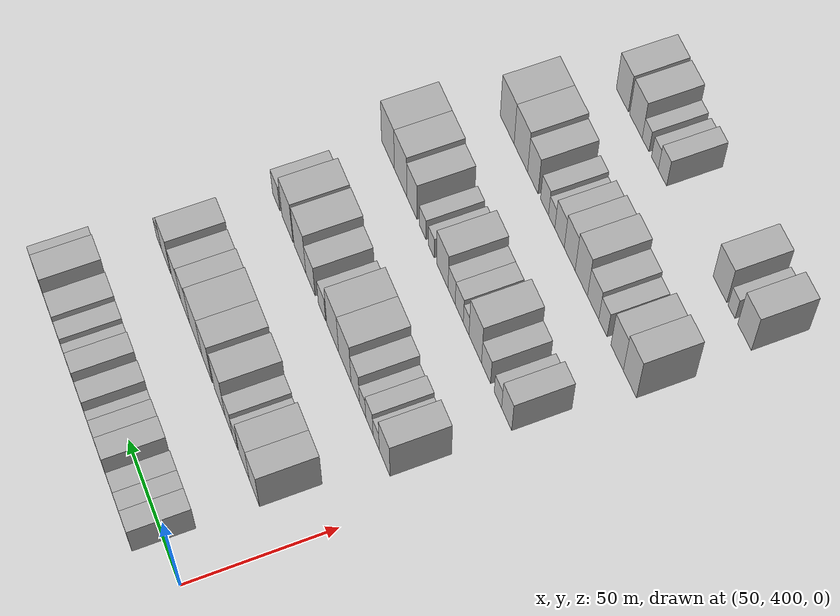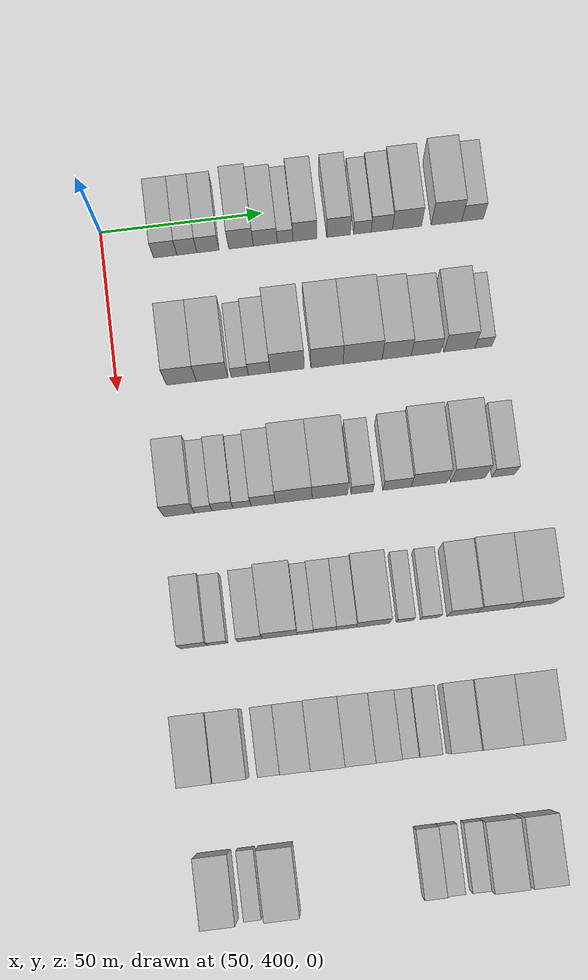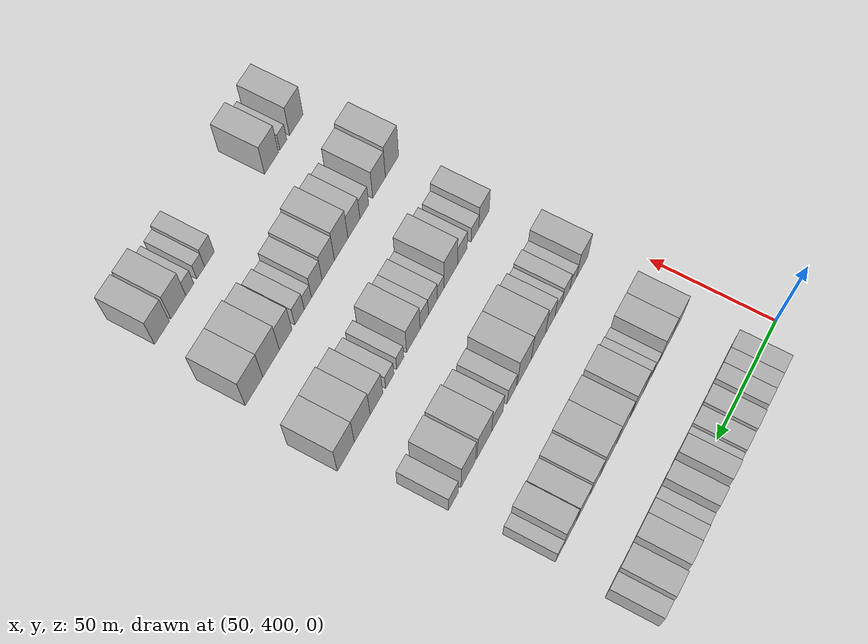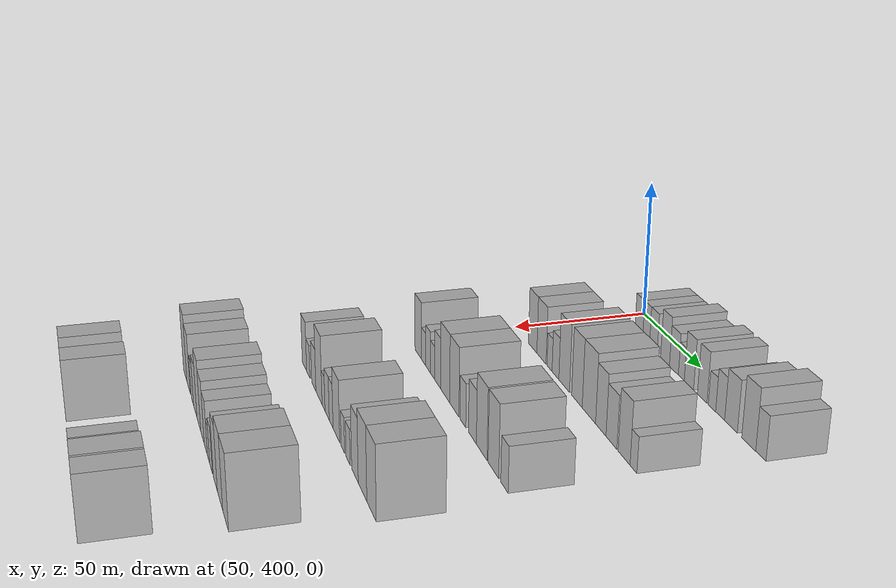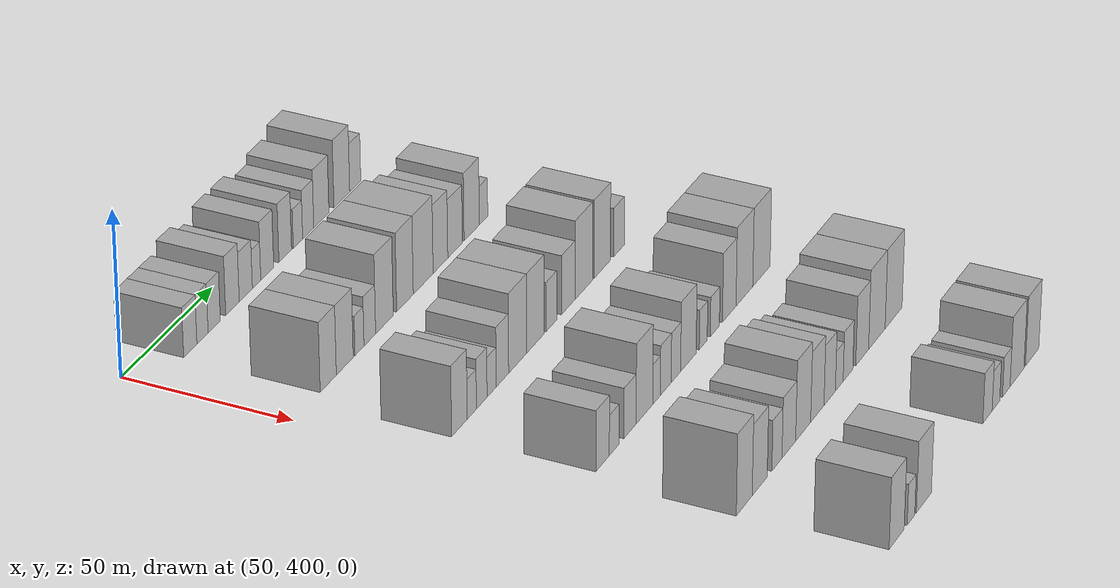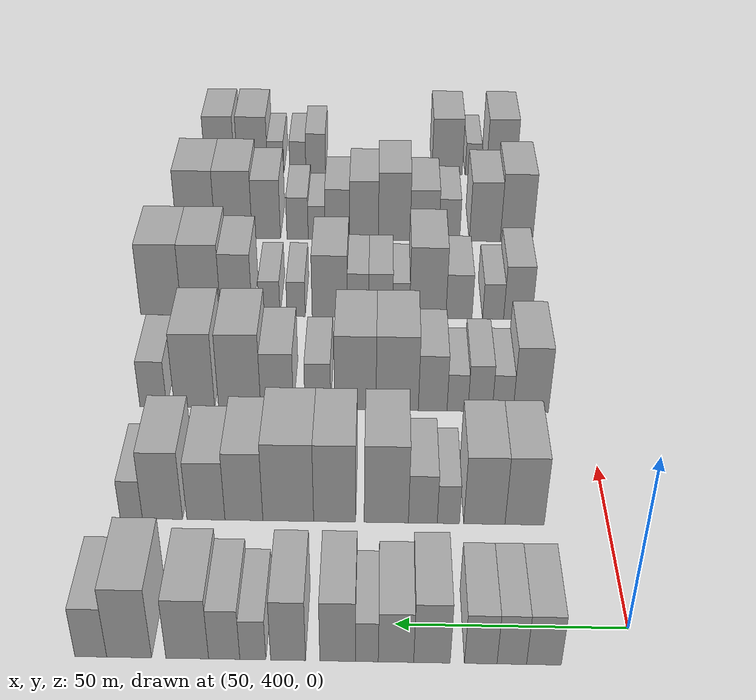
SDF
<sdf version="1.6">
 <world name="default">
  <model name="building_119">
   <static>1</static>
   <pose>50.0000 419.0222 0 0.000000 0.000000 0.000000</pose>
   <link name="link">
    <pose>0 0 7.50 0 0 0</pose>
    <collision name="collision"><geometry><box><size>20.0000 7.2438 15.0000</size></box></geometry></collision>
    <visual name="visual">
     <cast_shadows>0</cast_shadows>
     <geometry><box><size>20.0000 7.2438 15.0000</size></box></geometry>
     <material>
      <script>
       <uri>model://HANNAS_wall/materials/scripts</uri>
       <uri>model://HANNAS_wall/materials/textures</uri>
       <name>vrc/HANNAS_wall</name>
      </script>
     </material>
    </visual>
   </link>
  </model>
  <model name="building_120">
   <static>1</static>
   <pose>50.0000 425.7234 0 0.000000 0.000000 0.000000</pose>
   <link name="link">
    <pose>0 0 7.50 0 0 0</pose>
    <collision name="collision"><geometry><box><size>20.0000 6.1588 15.0000</size></box></geometry></collision>
    <visual name="visual">
     <cast_shadows>0</cast_shadows>
     <geometry><box><size>20.0000 6.1588 15.0000</size></box></geometry>
     <material>
      <script>
       <uri>model://HANNAS_wall/materials/scripts</uri>
       <uri>model://HANNAS_wall/materials/textures</uri>
       <name>vrc/HANNAS_wall</name>
      </script>
     </material>
    </visual>
   </link>
  </model>
  <model name="building_121">
   <static>1</static>
   <pose>50.0000 432.2003 0 0.000000 0.000000 0.000000</pose>
   <link name="link">
    <pose>0 0 7.50 0 0 0</pose>
    <collision name="collision"><geometry><box><size>20.0000 6.7949 15.0000</size></box></geometry></collision>
    <visual name="visual">
     <cast_shadows>0</cast_shadows>
     <geometry><box><size>20.0000 6.7949 15.0000</size></box></geometry>
     <material>
      <script>
       <uri>model://HANNAS_wall/materials/scripts</uri>
       <uri>model://HANNAS_wall/materials/textures</uri>
       <name>vrc/HANNAS_wall</name>
      </script>
     </material>
    </visual>
   </link>
  </model>
  <model name="building_122">
   <static>1</static>
   <pose>50.0000 442.4061 0 0.000000 0.000000 0.000000</pose>
   <link name="link">
    <pose>0 0 9.00 0 0 0</pose>
    <collision name="collision"><geometry><box><size>20.0000 7.6168 18.0000</size></box></geometry></collision>
    <visual name="visual">
     <cast_shadows>0</cast_shadows>
     <geometry><box><size>20.0000 7.6168 18.0000</size></box></geometry>
     <material>
      <script>
       <uri>model://HANNAS_wall/materials/scripts</uri>
       <uri>model://HANNAS_wall/materials/textures</uri>
       <name>vrc/HANNAS_wall</name>
      </script>
     </material>
    </visual>
   </link>
  </model>
  <model name="building_123">
   <static>1</static>
   <pose>50.0000 449.9223 0 0.000000 0.000000 0.000000</pose>
   <link name="link">
    <pose>0 0 7.50 0 0 0</pose>
    <collision name="collision"><geometry><box><size>20.0000 7.4155 15.0000</size></box></geometry></collision>
    <visual name="visual">
     <cast_shadows>0</cast_shadows>
     <geometry><box><size>20.0000 7.4155 15.0000</size></box></geometry>
     <material>
      <script>
       <uri>model://HANNAS_wall/materials/scripts</uri>
       <uri>model://HANNAS_wall/materials/textures</uri>
       <name>vrc/HANNAS_wall</name>
      </script>
     </material>
    </visual>
   </link>
  </model>
  <model name="building_124">
   <static>1</static>
   <pose>50.0000 456.0315 0 0.000000 0.000000 0.000000</pose>
   <link name="link">
    <pose>0 0 6.00 0 0 0</pose>
    <collision name="collision"><geometry><box><size>20.0000 4.8029 12.0000</size></box></geometry></collision>
    <visual name="visual">
     <cast_shadows>0</cast_shadows>
     <geometry><box><size>20.0000 4.8029 12.0000</size></box></geometry>
     <material>
      <script>
       <uri>model://HANNAS_wall/materials/scripts</uri>
       <uri>model://HANNAS_wall/materials/textures</uri>
       <name>vrc/HANNAS_wall</name>
      </script>
     </material>
    </visual>
   </link>
  </model>
  <model name="building_125">
   <static>1</static>
   <pose>50.0000 462.1482 0 0.000000 0.000000 0.000000</pose>
   <link name="link">
    <pose>0 0 9.00 0 0 0</pose>
    <collision name="collision"><geometry><box><size>20.0000 7.4305 18.0000</size></box></geometry></collision>
    <visual name="visual">
     <cast_shadows>0</cast_shadows>
     <geometry><box><size>20.0000 7.4305 18.0000</size></box></geometry>
     <material>
      <script>
       <uri>model://HANNAS_wall/materials/scripts</uri>
       <uri>model://HANNAS_wall/materials/textures</uri>
       <name>vrc/HANNAS_wall</name>
      </script>
     </material>
    </visual>
   </link>
  </model>
  <model name="building_126">
   <static>1</static>
   <pose>50.0000 472.5253 0 0.000000 0.000000 0.000000</pose>
   <link name="link">
    <pose>0 0 9.00 0 0 0</pose>
    <collision name="collision"><geometry><box><size>20.0000 7.3238 18.0000</size></box></geometry></collision>
    <visual name="visual">
     <cast_shadows>0</cast_shadows>
     <geometry><box><size>20.0000 7.3238 18.0000</size></box></geometry>
     <material>
      <script>
       <uri>model://HANNAS_wall/materials/scripts</uri>
       <uri>model://HANNAS_wall/materials/textures</uri>
       <name>vrc/HANNAS_wall</name>
      </script>
     </material>
    </visual>
   </link>
  </model>
  <model name="building_127">
   <static>1</static>
   <pose>50.0000 479.9237 0 0.000000 0.000000 0.000000</pose>
   <link name="link">
    <pose>0 0 6.00 0 0 0</pose>
    <collision name="collision"><geometry><box><size>20.0000 5.4729 12.0000</size></box></geometry></collision>
    <visual name="visual">
     <cast_shadows>0</cast_shadows>
     <geometry><box><size>20.0000 5.4729 12.0000</size></box></geometry>
     <material>
      <script>
       <uri>model://HANNAS_wall/materials/scripts</uri>
       <uri>model://HANNAS_wall/materials/textures</uri>
       <name>vrc/HANNAS_wall</name>
      </script>
     </material>
    </visual>
   </link>
  </model>
  <model name="building_128">
   <static>1</static>
   <pose>50.0000 485.9379 0 0.000000 0.000000 0.000000</pose>
   <link name="link">
    <pose>0 0 7.50 0 0 0</pose>
    <collision name="collision"><geometry><box><size>20.0000 6.5555 15.0000</size></box></geometry></collision>
    <visual name="visual">
     <cast_shadows>0</cast_shadows>
     <geometry><box><size>20.0000 6.5555 15.0000</size></box></geometry>
     <material>
      <script>
       <uri>model://HANNAS_wall/materials/scripts</uri>
       <uri>model://HANNAS_wall/materials/textures</uri>
       <name>vrc/HANNAS_wall</name>
      </script>
     </material>
    </visual>
   </link>
  </model>
  <model name="building_129">
   <static>1</static>
   <pose>50.0000 493.7126 0 0.000000 0.000000 0.000000</pose>
   <link name="link">
    <pose>0 0 9.00 0 0 0</pose>
    <collision name="collision"><geometry><box><size>20.0000 8.9940 18.0000</size></box></geometry></collision>
    <visual name="visual">
     <cast_shadows>0</cast_shadows>
     <geometry><box><size>20.0000 8.9940 18.0000</size></box></geometry>
     <material>
      <script>
       <uri>model://HANNAS_wall/materials/scripts</uri>
       <uri>model://HANNAS_wall/materials/textures</uri>
       <name>vrc/HANNAS_wall</name>
      </script>
     </material>
    </visual>
   </link>
  </model>
  <model name="building_130">
   <static>1</static>
   <pose>50.0000 505.9392 0 0.000000 0.000000 0.000000</pose>
   <link name="link">
    <pose>0 0 10.50 0 0 0</pose>
    <collision name="collision"><geometry><box><size>20.0000 9.4592 21.0000</size></box></geometry></collision>
    <visual name="visual">
     <cast_shadows>0</cast_shadows>
     <geometry><box><size>20.0000 9.4592 21.0000</size></box></geometry>
     <material>
      <script>
       <uri>model://HANNAS_wall/materials/scripts</uri>
       <uri>model://HANNAS_wall/materials/textures</uri>
       <name>vrc/HANNAS_wall</name>
      </script>
     </material>
    </visual>
   </link>
  </model>
  <model name="building_131">
   <static>1</static>
   <pose>50.0000 514.0240 0 0.000000 0.000000 0.000000</pose>
   <link name="link">
    <pose>0 0 7.50 0 0 0</pose>
    <collision name="collision"><geometry><box><size>20.0000 6.7103 15.0000</size></box></geometry></collision>
    <visual name="visual">
     <cast_shadows>0</cast_shadows>
     <geometry><box><size>20.0000 6.7103 15.0000</size></box></geometry>
     <material>
      <script>
       <uri>model://HANNAS_wall/materials/scripts</uri>
       <uri>model://HANNAS_wall/materials/textures</uri>
       <name>vrc/HANNAS_wall</name>
      </script>
     </material>
    </visual>
   </link>
  </model>
  <model name="building_255">
   <static>1</static>
   <pose>90.0000 419.5918 0 0.000000 0.000000 0.000000</pose>
   <link name="link">
    <pose>0 0 10.50 0 0 0</pose>
    <collision name="collision"><geometry><box><size>20.0000 9.1378 21.0000</size></box></geometry></collision>
    <visual name="visual">
     <cast_shadows>0</cast_shadows>
     <geometry><box><size>20.0000 9.1378 21.0000</size></box></geometry>
     <material>
      <script>
       <uri>model://HANNAS_wall/materials/scripts</uri>
       <uri>model://HANNAS_wall/materials/textures</uri>
       <name>vrc/HANNAS_wall</name>
      </script>
     </material>
    </visual>
   </link>
  </model>
  <model name="building_256">
   <static>1</static>
   <pose>90.0000 428.9878 0 0.000000 0.000000 0.000000</pose>
   <link name="link">
    <pose>0 0 10.50 0 0 0</pose>
    <collision name="collision"><geometry><box><size>20.0000 9.6542 21.0000</size></box></geometry></collision>
    <visual name="visual">
     <cast_shadows>0</cast_shadows>
     <geometry><box><size>20.0000 9.6542 21.0000</size></box></geometry>
     <material>
      <script>
       <uri>model://HANNAS_wall/materials/scripts</uri>
       <uri>model://HANNAS_wall/materials/textures</uri>
       <name>vrc/HANNAS_wall</name>
      </script>
     </material>
    </visual>
   </link>
  </model>
  <model name="building_257">
   <static>1</static>
   <pose>90.0000 437.4126 0 0.000000 0.000000 0.000000</pose>
   <link name="link">
    <pose>0 0 6.00 0 0 0</pose>
    <collision name="collision"><geometry><box><size>20.0000 5.1952 12.0000</size></box></geometry></collision>
    <visual name="visual">
     <cast_shadows>0</cast_shadows>
     <geometry><box><size>20.0000 5.1952 12.0000</size></box></geometry>
     <material>
      <script>
       <uri>model://HANNAS_wall/materials/scripts</uri>
       <uri>model://HANNAS_wall/materials/textures</uri>
       <name>vrc/HANNAS_wall</name>
      </script>
     </material>
    </visual>
   </link>
  </model>
  <model name="building_258">
   <static>1</static>
   <pose>90.0000 443.3906 0 0.000000 0.000000 0.000000</pose>
   <link name="link">
    <pose>0 0 7.50 0 0 0</pose>
    <collision name="collision"><geometry><box><size>20.0000 6.7607 15.0000</size></box></geometry></collision>
    <visual name="visual">
     <cast_shadows>0</cast_shadows>
     <geometry><box><size>20.0000 6.7607 15.0000</size></box></geometry>
     <material>
      <script>
       <uri>model://HANNAS_wall/materials/scripts</uri>
       <uri>model://HANNAS_wall/materials/textures</uri>
       <name>vrc/HANNAS_wall</name>
      </script>
     </material>
    </visual>
   </link>
  </model>
  <model name="building_259">
   <static>1</static>
   <pose>90.0000 451.9508 0 0.000000 0.000000 0.000000</pose>
   <link name="link">
    <pose>0 0 12.00 0 0 0</pose>
    <collision name="collision"><geometry><box><size>20.0000 10.3598 24.0000</size></box></geometry></collision>
    <visual name="visual">
     <cast_shadows>0</cast_shadows>
     <geometry><box><size>20.0000 10.3598 24.0000</size></box></geometry>
     <material>
      <script>
       <uri>model://HANNAS_wall/materials/scripts</uri>
       <uri>model://HANNAS_wall/materials/textures</uri>
       <name>vrc/HANNAS_wall</name>
      </script>
     </material>
    </visual>
   </link>
  </model>
  <model name="building_260">
   <static>1</static>
   <pose>90.0000 464.0607 0 0.000000 0.000000 0.000000</pose>
   <link name="link">
    <pose>0 0 12.00 0 0 0</pose>
    <collision name="collision"><geometry><box><size>20.0000 9.8599 24.0000</size></box></geometry></collision>
    <visual name="visual">
     <cast_shadows>0</cast_shadows>
     <geometry><box><size>20.0000 9.8599 24.0000</size></box></geometry>
     <material>
      <script>
       <uri>model://HANNAS_wall/materials/scripts</uri>
       <uri>model://HANNAS_wall/materials/textures</uri>
       <name>vrc/HANNAS_wall</name>
      </script>
     </material>
    </visual>
   </link>
  </model>
  <model name="building_261">
   <static>1</static>
   <pose>90.0000 474.9596 0 0.000000 0.000000 0.000000</pose>
   <link name="link">
    <pose>0 0 12.00 0 0 0</pose>
    <collision name="collision"><geometry><box><size>20.0000 11.9379 24.0000</size></box></geometry></collision>
    <visual name="visual">
     <cast_shadows>0</cast_shadows>
     <geometry><box><size>20.0000 11.9379 24.0000</size></box></geometry>
     <material>
      <script>
       <uri>model://HANNAS_wall/materials/scripts</uri>
       <uri>model://HANNAS_wall/materials/textures</uri>
       <name>vrc/HANNAS_wall</name>
      </script>
     </material>
    </visual>
   </link>
  </model>
  <model name="building_262">
   <static>1</static>
   <pose>90.0000 485.3880 0 0.000000 0.000000 0.000000</pose>
   <link name="link">
    <pose>0 0 10.50 0 0 0</pose>
    <collision name="collision"><geometry><box><size>20.0000 8.9188 21.0000</size></box></geometry></collision>
    <visual name="visual">
     <cast_shadows>0</cast_shadows>
     <geometry><box><size>20.0000 8.9188 21.0000</size></box></geometry>
     <material>
      <script>
       <uri>model://HANNAS_wall/materials/scripts</uri>
       <uri>model://HANNAS_wall/materials/textures</uri>
       <name>vrc/HANNAS_wall</name>
      </script>
     </material>
    </visual>
   </link>
  </model>
  <model name="building_263">
   <static>1</static>
   <pose>90.0000 494.3400 0 0.000000 0.000000 0.000000</pose>
   <link name="link">
    <pose>0 0 9.00 0 0 0</pose>
    <collision name="collision"><geometry><box><size>20.0000 8.9853 18.0000</size></box></geometry></collision>
    <visual name="visual">
     <cast_shadows>0</cast_shadows>
     <geometry><box><size>20.0000 8.9853 18.0000</size></box></geometry>
     <material>
      <script>
       <uri>model://HANNAS_wall/materials/scripts</uri>
       <uri>model://HANNAS_wall/materials/textures</uri>
       <name>vrc/HANNAS_wall</name>
      </script>
     </material>
    </visual>
   </link>
  </model>
  <model name="building_264">
   <static>1</static>
   <pose>90.0000 504.5758 0 0.000000 0.000000 0.000000</pose>
   <link name="link">
    <pose>0 0 10.50 0 0 0</pose>
    <collision name="collision"><geometry><box><size>20.0000 9.4862 21.0000</size></box></geometry></collision>
    <visual name="visual">
     <cast_shadows>0</cast_shadows>
     <geometry><box><size>20.0000 9.4862 21.0000</size></box></geometry>
     <material>
      <script>
       <uri>model://HANNAS_wall/materials/scripts</uri>
       <uri>model://HANNAS_wall/materials/textures</uri>
       <name>vrc/HANNAS_wall</name>
      </script>
     </material>
    </visual>
   </link>
  </model>
  <model name="building_265">
   <static>1</static>
   <pose>90.0000 511.9490 0 0.000000 0.000000 0.000000</pose>
   <link name="link">
    <pose>0 0 6.00 0 0 0</pose>
    <collision name="collision"><geometry><box><size>20.0000 5.2603 12.0000</size></box></geometry></collision>
    <visual name="visual">
     <cast_shadows>0</cast_shadows>
     <geometry><box><size>20.0000 5.2603 12.0000</size></box></geometry>
     <material>
      <script>
       <uri>model://HANNAS_wall/materials/scripts</uri>
       <uri>model://HANNAS_wall/materials/textures</uri>
       <name>vrc/HANNAS_wall</name>
      </script>
     </material>
    </visual>
   </link>
  </model>
  <model name="building_390">
   <static>1</static>
   <pose>130.0000 414.5360 0 0.000000 0.000000 0.000000</pose>
   <link name="link">
    <pose>0 0 10.50 0 0 0</pose>
    <collision name="collision"><geometry><box><size>20.0000 9.1112 21.0000</size></box></geometry></collision>
    <visual name="visual">
     <cast_shadows>0</cast_shadows>
     <geometry><box><size>20.0000 9.1112 21.0000</size></box></geometry>
     <material>
      <script>
       <uri>model://HANNAS_wall/materials/scripts</uri>
       <uri>model://HANNAS_wall/materials/textures</uri>
       <name>vrc/HANNAS_wall</name>
      </script>
     </material>
    </visual>
   </link>
  </model>
  <model name="building_391">
   <static>1</static>
   <pose>130.0000 421.7872 0 0.000000 0.000000 0.000000</pose>
   <link name="link">
    <pose>0 0 6.00 0 0 0</pose>
    <collision name="collision"><geometry><box><size>20.0000 5.3911 12.0000</size></box></geometry></collision>
    <visual name="visual">
     <cast_shadows>0</cast_shadows>
     <geometry><box><size>20.0000 5.3911 12.0000</size></box></geometry>
     <material>
      <script>
       <uri>model://HANNAS_wall/materials/scripts</uri>
       <uri>model://HANNAS_wall/materials/textures</uri>
       <name>vrc/HANNAS_wall</name>
      </script>
     </material>
    </visual>
   </link>
  </model>
  <model name="building_392">
   <static>1</static>
   <pose>130.0000 427.6297 0 0.000000 0.000000 0.000000</pose>
   <link name="link">
    <pose>0 0 7.50 0 0 0</pose>
    <collision name="collision"><geometry><box><size>20.0000 6.2939 15.0000</size></box></geometry></collision>
    <visual name="visual">
     <cast_shadows>0</cast_shadows>
     <geometry><box><size>20.0000 6.2939 15.0000</size></box></geometry>
     <material>
      <script>
       <uri>model://HANNAS_wall/materials/scripts</uri>
       <uri>model://HANNAS_wall/materials/textures</uri>
       <name>vrc/HANNAS_wall</name>
      </script>
     </material>
    </visual>
   </link>
  </model>
  <model name="building_393">
   <static>1</static>
   <pose>130.0000 433.4944 0 0.000000 0.000000 0.000000</pose>
   <link name="link">
    <pose>0 0 6.00 0 0 0</pose>
    <collision name="collision"><geometry><box><size>20.0000 5.4356 12.0000</size></box></geometry></collision>
    <visual name="visual">
     <cast_shadows>0</cast_shadows>
     <geometry><box><size>20.0000 5.4356 12.0000</size></box></geometry>
     <material>
      <script>
       <uri>model://HANNAS_wall/materials/scripts</uri>
       <uri>model://HANNAS_wall/materials/textures</uri>
       <name>vrc/HANNAS_wall</name>
      </script>
     </material>
    </visual>
   </link>
  </model>
  <model name="building_394">
   <static>1</static>
   <pose>130.0000 439.9347 0 0.000000 0.000000 0.000000</pose>
   <link name="link">
    <pose>0 0 9.00 0 0 0</pose>
    <collision name="collision"><geometry><box><size>20.0000 7.4450 18.0000</size></box></geometry></collision>
    <visual name="visual">
     <cast_shadows>0</cast_shadows>
     <geometry><box><size>20.0000 7.4450 18.0000</size></box></geometry>
     <material>
      <script>
       <uri>model://HANNAS_wall/materials/scripts</uri>
       <uri>model://HANNAS_wall/materials/textures</uri>
       <name>vrc/HANNAS_wall</name>
      </script>
     </material>
    </visual>
   </link>
  </model>
  <model name="building_395">
   <static>1</static>
   <pose>130.0000 449.1612 0 0.000000 0.000000 0.000000</pose>
   <link name="link">
    <pose>0 0 12.00 0 0 0</pose>
    <collision name="collision"><geometry><box><size>20.0000 11.0080 24.0000</size></box></geometry></collision>
    <visual name="visual">
     <cast_shadows>0</cast_shadows>
     <geometry><box><size>20.0000 11.0080 24.0000</size></box></geometry>
     <material>
      <script>
       <uri>model://HANNAS_wall/materials/scripts</uri>
       <uri>model://HANNAS_wall/materials/textures</uri>
       <name>vrc/HANNAS_wall</name>
      </script>
     </material>
    </visual>
   </link>
  </model>
  <model name="building_396">
   <static>1</static>
   <pose>130.0000 460.0300 0 0.000000 0.000000 0.000000</pose>
   <link name="link">
    <pose>0 0 12.00 0 0 0</pose>
    <collision name="collision"><geometry><box><size>20.0000 10.7296 24.0000</size></box></geometry></collision>
    <visual name="visual">
     <cast_shadows>0</cast_shadows>
     <geometry><box><size>20.0000 10.7296 24.0000</size></box></geometry>
     <material>
      <script>
       <uri>model://HANNAS_wall/materials/scripts</uri>
       <uri>model://HANNAS_wall/materials/textures</uri>
       <name>vrc/HANNAS_wall</name>
      </script>
     </material>
    </visual>
   </link>
  </model>
  <model name="building_397">
   <static>1</static>
   <pose>130.0000 469.7368 0 0.000000 0.000000 0.000000</pose>
   <link name="link">
    <pose>0 0 7.50 0 0 0</pose>
    <collision name="collision"><geometry><box><size>20.0000 6.6840 15.0000</size></box></geometry></collision>
    <visual name="visual">
     <cast_shadows>0</cast_shadows>
     <geometry><box><size>20.0000 6.6840 15.0000</size></box></geometry>
     <material>
      <script>
       <uri>model://HANNAS_wall/materials/scripts</uri>
       <uri>model://HANNAS_wall/materials/textures</uri>
       <name>vrc/HANNAS_wall</name>
      </script>
     </material>
    </visual>
   </link>
  </model>
  <model name="building_398">
   <static>1</static>
   <pose>130.0000 480.3447 0 0.000000 0.000000 0.000000</pose>
   <link name="link">
    <pose>0 0 9.00 0 0 0</pose>
    <collision name="collision"><geometry><box><size>20.0000 8.5318 18.0000</size></box></geometry></collision>
    <visual name="visual">
     <cast_shadows>0</cast_shadows>
     <geometry><box><size>20.0000 8.5318 18.0000</size></box></geometry>
     <material>
      <script>
       <uri>model://HANNAS_wall/materials/scripts</uri>
       <uri>model://HANNAS_wall/materials/textures</uri>
       <name>vrc/HANNAS_wall</name>
      </script>
     </material>
    </visual>
   </link>
  </model>
  <model name="building_399">
   <static>1</static>
   <pose>130.0000 490.1055 0 0.000000 0.000000 0.000000</pose>
   <link name="link">
    <pose>0 0 12.00 0 0 0</pose>
    <collision name="collision"><geometry><box><size>20.0000 10.9897 24.0000</size></box></geometry></collision>
    <visual name="visual">
     <cast_shadows>0</cast_shadows>
     <geometry><box><size>20.0000 10.9897 24.0000</size></box></geometry>
     <material>
      <script>
       <uri>model://HANNAS_wall/materials/scripts</uri>
       <uri>model://HANNAS_wall/materials/textures</uri>
       <name>vrc/HANNAS_wall</name>
      </script>
     </material>
    </visual>
   </link>
  </model>
  <model name="building_400">
   <static>1</static>
   <pose>130.0000 501.8686 0 0.000000 0.000000 0.000000</pose>
   <link name="link">
    <pose>0 0 12.00 0 0 0</pose>
    <collision name="collision"><geometry><box><size>20.0000 10.5365 24.0000</size></box></geometry></collision>
    <visual name="visual">
     <cast_shadows>0</cast_shadows>
     <geometry><box><size>20.0000 10.5365 24.0000</size></box></geometry>
     <material>
      <script>
       <uri>model://HANNAS_wall/materials/scripts</uri>
       <uri>model://HANNAS_wall/materials/textures</uri>
       <name>vrc/HANNAS_wall</name>
      </script>
     </material>
    </visual>
   </link>
  </model>
  <model name="building_401">
   <static>1</static>
   <pose>130.0000 512.6352 0 0.000000 0.000000 0.000000</pose>
   <link name="link">
    <pose>0 0 7.50 0 0 0</pose>
    <collision name="collision"><geometry><box><size>20.0000 6.9969 15.0000</size></box></geometry></collision>
    <visual name="visual">
     <cast_shadows>0</cast_shadows>
     <geometry><box><size>20.0000 6.9969 15.0000</size></box></geometry>
     <material>
      <script>
       <uri>model://HANNAS_wall/materials/scripts</uri>
       <uri>model://HANNAS_wall/materials/textures</uri>
       <name>vrc/HANNAS_wall</name>
      </script>
     </material>
    </visual>
   </link>
  </model>
  <model name="building_523">
   <static>1</static>
   <pose>170.0000 414.5745 0 0.000000 0.000000 0.000000</pose>
   <link name="link">
    <pose>0 0 9.00 0 0 0</pose>
    <collision name="collision"><geometry><box><size>20.0000 8.0607 18.0000</size></box></geometry></collision>
    <visual name="visual">
     <cast_shadows>0</cast_shadows>
     <geometry><box><size>20.0000 8.0607 18.0000</size></box></geometry>
     <material>
      <script>
       <uri>model://HANNAS_wall/materials/scripts</uri>
       <uri>model://HANNAS_wall/materials/textures</uri>
       <name>vrc/HANNAS_wall</name>
      </script>
     </material>
    </visual>
   </link>
  </model>
  <model name="building_524">
   <static>1</static>
   <pose>170.0000 421.5926 0 0.000000 0.000000 0.000000</pose>
   <link name="link">
    <pose>0 0 6.00 0 0 0</pose>
    <collision name="collision"><geometry><box><size>20.0000 5.9756 12.0000</size></box></geometry></collision>
    <visual name="visual">
     <cast_shadows>0</cast_shadows>
     <geometry><box><size>20.0000 5.9756 12.0000</size></box></geometry>
     <material>
      <script>
       <uri>model://HANNAS_wall/materials/scripts</uri>
       <uri>model://HANNAS_wall/materials/textures</uri>
       <name>vrc/HANNAS_wall</name>
      </script>
     </material>
    </visual>
   </link>
  </model>
  <model name="building_525">
   <static>1</static>
   <pose>170.0000 431.3042 0 0.000000 0.000000 0.000000</pose>
   <link name="link">
    <pose>0 0 7.50 0 0 0</pose>
    <collision name="collision"><geometry><box><size>20.0000 7.4475 15.0000</size></box></geometry></collision>
    <visual name="visual">
     <cast_shadows>0</cast_shadows>
     <geometry><box><size>20.0000 7.4475 15.0000</size></box></geometry>
     <material>
      <script>
       <uri>model://HANNAS_wall/materials/scripts</uri>
       <uri>model://HANNAS_wall/materials/textures</uri>
       <name>vrc/HANNAS_wall</name>
      </script>
     </material>
    </visual>
   </link>
  </model>
  <model name="building_526">
   <static>1</static>
   <pose>170.0000 440.2088 0 0.000000 0.000000 0.000000</pose>
   <link name="link">
    <pose>0 0 12.00 0 0 0</pose>
    <collision name="collision"><geometry><box><size>20.0000 10.3616 24.0000</size></box></geometry></collision>
    <visual name="visual">
     <cast_shadows>0</cast_shadows>
     <geometry><box><size>20.0000 10.3616 24.0000</size></box></geometry>
     <material>
      <script>
       <uri>model://HANNAS_wall/materials/scripts</uri>
       <uri>model://HANNAS_wall/materials/textures</uri>
       <name>vrc/HANNAS_wall</name>
      </script>
     </material>
    </visual>
   </link>
  </model>
  <model name="building_527">
   <static>1</static>
   <pose>170.0000 447.7937 0 0.000000 0.000000 0.000000</pose>
   <link name="link">
    <pose>0 0 6.00 0 0 0</pose>
    <collision name="collision"><geometry><box><size>20.0000 4.8082 12.0000</size></box></geometry></collision>
    <visual name="visual">
     <cast_shadows>0</cast_shadows>
     <geometry><box><size>20.0000 4.8082 12.0000</size></box></geometry>
     <material>
      <script>
       <uri>model://HANNAS_wall/materials/scripts</uri>
       <uri>model://HANNAS_wall/materials/textures</uri>
       <name>vrc/HANNAS_wall</name>
      </script>
     </material>
    </visual>
   </link>
  </model>
  <model name="building_528">
   <static>1</static>
   <pose>170.0000 453.6166 0 0.000000 0.000000 0.000000</pose>
   <link name="link">
    <pose>0 0 7.50 0 0 0</pose>
    <collision name="collision"><geometry><box><size>20.0000 6.8377 15.0000</size></box></geometry></collision>
    <visual name="visual">
     <cast_shadows>0</cast_shadows>
     <geometry><box><size>20.0000 6.8377 15.0000</size></box></geometry>
     <material>
      <script>
       <uri>model://HANNAS_wall/materials/scripts</uri>
       <uri>model://HANNAS_wall/materials/textures</uri>
       <name>vrc/HANNAS_wall</name>
      </script>
     </material>
    </visual>
   </link>
  </model>
  <model name="building_529">
   <static>1</static>
   <pose>170.0000 460.0557 0 0.000000 0.000000 0.000000</pose>
   <link name="link">
    <pose>0 0 7.50 0 0 0</pose>
    <collision name="collision"><geometry><box><size>20.0000 6.0405 15.0000</size></box></geometry></collision>
    <visual name="visual">
     <cast_shadows>0</cast_shadows>
     <geometry><box><size>20.0000 6.0405 15.0000</size></box></geometry>
     <material>
      <script>
       <uri>model://HANNAS_wall/materials/scripts</uri>
       <uri>model://HANNAS_wall/materials/textures</uri>
       <name>vrc/HANNAS_wall</name>
      </script>
     </material>
    </visual>
   </link>
  </model>
  <model name="building_530">
   <static>1</static>
   <pose>170.0000 468.0767 0 0.000000 0.000000 0.000000</pose>
   <link name="link">
    <pose>0 0 10.50 0 0 0</pose>
    <collision name="collision"><geometry><box><size>20.0000 10.0014 21.0000</size></box></geometry></collision>
    <visual name="visual">
     <cast_shadows>0</cast_shadows>
     <geometry><box><size>20.0000 10.0014 21.0000</size></box></geometry>
     <material>
      <script>
       <uri>model://HANNAS_wall/materials/scripts</uri>
       <uri>model://HANNAS_wall/materials/textures</uri>
       <name>vrc/HANNAS_wall</name>
      </script>
     </material>
    </visual>
   </link>
  </model>
  <model name="building_531">
   <static>1</static>
   <pose>170.0000 477.6666 0 0.000000 0.000000 0.000000</pose>
   <link name="link">
    <pose>0 0 6.00 0 0 0</pose>
    <collision name="collision"><geometry><box><size>20.0000 5.1785 12.0000</size></box></geometry></collision>
    <visual name="visual">
     <cast_shadows>0</cast_shadows>
     <geometry><box><size>20.0000 5.1785 12.0000</size></box></geometry>
     <material>
      <script>
       <uri>model://HANNAS_wall/materials/scripts</uri>
       <uri>model://HANNAS_wall/materials/textures</uri>
       <name>vrc/HANNAS_wall</name>
      </script>
     </material>
    </visual>
   </link>
  </model>
  <model name="building_532">
   <static>1</static>
   <pose>170.0000 485.2415 0 0.000000 0.000000 0.000000</pose>
   <link name="link">
    <pose>0 0 6.00 0 0 0</pose>
    <collision name="collision"><geometry><box><size>20.0000 5.9714 12.0000</size></box></geometry></collision>
    <visual name="visual">
     <cast_shadows>0</cast_shadows>
     <geometry><box><size>20.0000 5.9714 12.0000</size></box></geometry>
     <material>
      <script>
       <uri>model://HANNAS_wall/materials/scripts</uri>
       <uri>model://HANNAS_wall/materials/textures</uri>
       <name>vrc/HANNAS_wall</name>
      </script>
     </material>
    </visual>
   </link>
  </model>
  <model name="building_533">
   <static>1</static>
   <pose>170.0000 494.7209 0 0.000000 0.000000 0.000000</pose>
   <link name="link">
    <pose>0 0 10.50 0 0 0</pose>
    <collision name="collision"><geometry><box><size>20.0000 8.9873 21.0000</size></box></geometry></collision>
    <visual name="visual">
     <cast_shadows>0</cast_shadows>
     <geometry><box><size>20.0000 8.9873 21.0000</size></box></geometry>
     <material>
      <script>
       <uri>model://HANNAS_wall/materials/scripts</uri>
       <uri>model://HANNAS_wall/materials/textures</uri>
       <name>vrc/HANNAS_wall</name>
      </script>
     </material>
    </visual>
   </link>
  </model>
  <model name="building_534">
   <static>1</static>
   <pose>170.0000 504.8153 0 0.000000 0.000000 0.000000</pose>
   <link name="link">
    <pose>0 0 12.00 0 0 0</pose>
    <collision name="collision"><geometry><box><size>20.0000 11.2014 24.0000</size></box></geometry></collision>
    <visual name="visual">
     <cast_shadows>0</cast_shadows>
     <geometry><box><size>20.0000 11.2014 24.0000</size></box></geometry>
     <material>
      <script>
       <uri>model://HANNAS_wall/materials/scripts</uri>
       <uri>model://HANNAS_wall/materials/textures</uri>
       <name>vrc/HANNAS_wall</name>
      </script>
     </material>
    </visual>
   </link>
  </model>
  <model name="building_535">
   <static>1</static>
   <pose>170.0000 516.2757 0 0.000000 0.000000 0.000000</pose>
   <link name="link">
    <pose>0 0 12.00 0 0 0</pose>
    <collision name="collision"><geometry><box><size>20.0000 11.7195 24.0000</size></box></geometry></collision>
    <visual name="visual">
     <cast_shadows>0</cast_shadows>
     <geometry><box><size>20.0000 11.7195 24.0000</size></box></geometry>
     <material>
      <script>
       <uri>model://HANNAS_wall/materials/scripts</uri>
       <uri>model://HANNAS_wall/materials/textures</uri>
       <name>vrc/HANNAS_wall</name>
      </script>
     </material>
    </visual>
   </link>
  </model>
  <model name="building_658">
   <static>1</static>
   <pose>210.0000 411.7172 0 0.000000 0.000000 0.000000</pose>
   <link name="link">
    <pose>0 0 12.00 0 0 0</pose>
    <collision name="collision"><geometry><box><size>20.0000 9.9818 24.0000</size></box></geometry></collision>
    <visual name="visual">
     <cast_shadows>0</cast_shadows>
     <geometry><box><size>20.0000 9.9818 24.0000</size></box></geometry>
     <material>
      <script>
       <uri>model://HANNAS_wall/materials/scripts</uri>
       <uri>model://HANNAS_wall/materials/textures</uri>
       <name>vrc/HANNAS_wall</name>
      </script>
     </material>
    </visual>
   </link>
  </model>
  <model name="building_659">
   <static>1</static>
   <pose>210.0000 421.4872 0 0.000000 0.000000 0.000000</pose>
   <link name="link">
    <pose>0 0 10.50 0 0 0</pose>
    <collision name="collision"><geometry><box><size>20.0000 9.5581 21.0000</size></box></geometry></collision>
    <visual name="visual">
     <cast_shadows>0</cast_shadows>
     <geometry><box><size>20.0000 9.5581 21.0000</size></box></geometry>
     <material>
      <script>
       <uri>model://HANNAS_wall/materials/scripts</uri>
       <uri>model://HANNAS_wall/materials/textures</uri>
       <name>vrc/HANNAS_wall</name>
      </script>
     </material>
    </visual>
   </link>
  </model>
  <model name="building_660">
   <static>1</static>
   <pose>210.0000 432.5100 0 0.000000 0.000000 0.000000</pose>
   <link name="link">
    <pose>0 0 7.50 0 0 0</pose>
    <collision name="collision"><geometry><box><size>20.0000 6.4875 15.0000</size></box></geometry></collision>
    <visual name="visual">
     <cast_shadows>0</cast_shadows>
     <geometry><box><size>20.0000 6.4875 15.0000</size></box></geometry>
     <material>
      <script>
       <uri>model://HANNAS_wall/materials/scripts</uri>
       <uri>model://HANNAS_wall/materials/textures</uri>
       <name>vrc/HANNAS_wall</name>
      </script>
     </material>
    </visual>
   </link>
  </model>
  <model name="building_661">
   <static>1</static>
   <pose>210.0000 440.1941 0 0.000000 0.000000 0.000000</pose>
   <link name="link">
    <pose>0 0 9.00 0 0 0</pose>
    <collision name="collision"><geometry><box><size>20.0000 8.8808 18.0000</size></box></geometry></collision>
    <visual name="visual">
     <cast_shadows>0</cast_shadows>
     <geometry><box><size>20.0000 8.8808 18.0000</size></box></geometry>
     <material>
      <script>
       <uri>model://HANNAS_wall/materials/scripts</uri>
       <uri>model://HANNAS_wall/materials/textures</uri>
       <name>vrc/HANNAS_wall</name>
      </script>
     </material>
    </visual>
   </link>
  </model>
  <model name="building_662">
   <static>1</static>
   <pose>210.0000 449.5505 0 0.000000 0.000000 0.000000</pose>
   <link name="link">
    <pose>0 0 12.00 0 0 0</pose>
    <collision name="collision"><geometry><box><size>20.0000 9.8319 24.0000</size></box></geometry></collision>
    <visual name="visual">
     <cast_shadows>0</cast_shadows>
     <geometry><box><size>20.0000 9.8319 24.0000</size></box></geometry>
     <material>
      <script>
       <uri>model://HANNAS_wall/materials/scripts</uri>
       <uri>model://HANNAS_wall/materials/textures</uri>
       <name>vrc/HANNAS_wall</name>
      </script>
     </material>
    </visual>
   </link>
  </model>
  <model name="building_663">
   <static>1</static>
   <pose>210.0000 458.8950 0 0.000000 0.000000 0.000000</pose>
   <link name="link">
    <pose>0 0 10.50 0 0 0</pose>
    <collision name="collision"><geometry><box><size>20.0000 8.8571 21.0000</size></box></geometry></collision>
    <visual name="visual">
     <cast_shadows>0</cast_shadows>
     <geometry><box><size>20.0000 8.8571 21.0000</size></box></geometry>
     <material>
      <script>
       <uri>model://HANNAS_wall/materials/scripts</uri>
       <uri>model://HANNAS_wall/materials/textures</uri>
       <name>vrc/HANNAS_wall</name>
      </script>
     </material>
    </visual>
   </link>
  </model>
  <model name="building_664">
   <static>1</static>
   <pose>210.0000 467.1404 0 0.000000 0.000000 0.000000</pose>
   <link name="link">
    <pose>0 0 9.00 0 0 0</pose>
    <collision name="collision"><geometry><box><size>20.0000 7.6337 18.0000</size></box></geometry></collision>
    <visual name="visual">
     <cast_shadows>0</cast_shadows>
     <geometry><box><size>20.0000 7.6337 18.0000</size></box></geometry>
     <material>
      <script>
       <uri>model://HANNAS_wall/materials/scripts</uri>
       <uri>model://HANNAS_wall/materials/textures</uri>
       <name>vrc/HANNAS_wall</name>
      </script>
     </material>
    </visual>
   </link>
  </model>
  <model name="building_665">
   <static>1</static>
   <pose>210.0000 473.5704 0 0.000000 0.000000 0.000000</pose>
   <link name="link">
    <pose>0 0 6.00 0 0 0</pose>
    <collision name="collision"><geometry><box><size>20.0000 5.2264 12.0000</size></box></geometry></collision>
    <visual name="visual">
     <cast_shadows>0</cast_shadows>
     <geometry><box><size>20.0000 5.2264 12.0000</size></box></geometry>
     <material>
      <script>
       <uri>model://HANNAS_wall/materials/scripts</uri>
       <uri>model://HANNAS_wall/materials/textures</uri>
       <name>vrc/HANNAS_wall</name>
      </script>
     </material>
    </visual>
   </link>
  </model>
  <model name="building_666">
   <static>1</static>
   <pose>210.0000 479.4882 0 0.000000 0.000000 0.000000</pose>
   <link name="link">
    <pose>0 0 7.50 0 0 0</pose>
    <collision name="collision"><geometry><box><size>20.0000 6.6093 15.0000</size></box></geometry></collision>
    <visual name="visual">
     <cast_shadows>0</cast_shadows>
     <geometry><box><size>20.0000 6.6093 15.0000</size></box></geometry>
     <material>
      <script>
       <uri>model://HANNAS_wall/materials/scripts</uri>
       <uri>model://HANNAS_wall/materials/textures</uri>
       <name>vrc/HANNAS_wall</name>
      </script>
     </material>
    </visual>
   </link>
  </model>
  <model name="building_667">
   <static>1</static>
   <pose>210.0000 489.1901 0 0.000000 0.000000 0.000000</pose>
   <link name="link">
    <pose>0 0 10.50 0 0 0</pose>
    <collision name="collision"><geometry><box><size>20.0000 8.7943 21.0000</size></box></geometry></collision>
    <visual name="visual">
     <cast_shadows>0</cast_shadows>
     <geometry><box><size>20.0000 8.7943 21.0000</size></box></geometry>
     <material>
      <script>
       <uri>model://HANNAS_wall/materials/scripts</uri>
       <uri>model://HANNAS_wall/materials/textures</uri>
       <name>vrc/HANNAS_wall</name>
      </script>
     </material>
    </visual>
   </link>
  </model>
  <model name="building_668">
   <static>1</static>
   <pose>210.0000 499.3291 0 0.000000 0.000000 0.000000</pose>
   <link name="link">
    <pose>0 0 12.00 0 0 0</pose>
    <collision name="collision"><geometry><box><size>20.0000 11.4837 24.0000</size></box></geometry></collision>
    <visual name="visual">
     <cast_shadows>0</cast_shadows>
     <geometry><box><size>20.0000 11.4837 24.0000</size></box></geometry>
     <material>
      <script>
       <uri>model://HANNAS_wall/materials/scripts</uri>
       <uri>model://HANNAS_wall/materials/textures</uri>
       <name>vrc/HANNAS_wall</name>
      </script>
     </material>
    </visual>
   </link>
  </model>
  <model name="building_669">
   <static>1</static>
   <pose>210.0000 511.0325 0 0.000000 0.000000 0.000000</pose>
   <link name="link">
    <pose>0 0 12.00 0 0 0</pose>
    <collision name="collision"><geometry><box><size>20.0000 11.9231 24.0000</size></box></geometry></collision>
    <visual name="visual">
     <cast_shadows>0</cast_shadows>
     <geometry><box><size>20.0000 11.9231 24.0000</size></box></geometry>
     <material>
      <script>
       <uri>model://HANNAS_wall/materials/scripts</uri>
       <uri>model://HANNAS_wall/materials/textures</uri>
       <name>vrc/HANNAS_wall</name>
      </script>
     </material>
    </visual>
   </link>
  </model>
  <model name="building_799">
   <static>1</static>
   <pose>250.0000 413.5500 0 0.000000 0.000000 0.000000</pose>
   <link name="link">
    <pose>0 0 10.50 0 0 0</pose>
    <collision name="collision"><geometry><box><size>20.0000 9.9392 21.0000</size></box></geometry></collision>
    <visual name="visual">
     <cast_shadows>0</cast_shadows>
     <geometry><box><size>20.0000 9.9392 21.0000</size></box></geometry>
     <material>
      <script>
       <uri>model://HANNAS_wall/materials/scripts</uri>
       <uri>model://HANNAS_wall/materials/textures</uri>
       <name>vrc/HANNAS_wall</name>
      </script>
     </material>
    </visual>
   </link>
  </model>
  <model name="building_800">
   <static>1</static>
   <pose>250.0000 423.0531 0 0.000000 0.000000 0.000000</pose>
   <link name="link">
    <pose>0 0 6.00 0 0 0</pose>
    <collision name="collision"><geometry><box><size>20.0000 5.0669 12.0000</size></box></geometry></collision>
    <visual name="visual">
     <cast_shadows>0</cast_shadows>
     <geometry><box><size>20.0000 5.0669 12.0000</size></box></geometry>
     <material>
      <script>
       <uri>model://HANNAS_wall/materials/scripts</uri>
       <uri>model://HANNAS_wall/materials/textures</uri>
       <name>vrc/HANNAS_wall</name>
      </script>
     </material>
    </visual>
   </link>
  </model>
  <model name="building_801">
   <static>1</static>
   <pose>250.0000 431.6580 0 0.000000 0.000000 0.000000</pose>
   <link name="link">
    <pose>0 0 10.50 0 0 0</pose>
    <collision name="collision"><geometry><box><size>20.0000 10.1429 21.0000</size></box></geometry></collision>
    <visual name="visual">
     <cast_shadows>0</cast_shadows>
     <geometry><box><size>20.0000 10.1429 21.0000</size></box></geometry>
     <material>
      <script>
       <uri>model://HANNAS_wall/materials/scripts</uri>
       <uri>model://HANNAS_wall/materials/textures</uri>
       <name>vrc/HANNAS_wall</name>
      </script>
     </material>
    </visual>
   </link>
  </model>
  <model name="building_802">
   <static>1</static>
   <pose>250.0000 475.6455 0 0.000000 0.000000 0.000000</pose>
   <link name="link">
    <pose>0 0 7.50 0 0 0</pose>
    <collision name="collision"><geometry><box><size>20.0000 6.6107 15.0000</size></box></geometry></collision>
    <visual name="visual">
     <cast_shadows>0</cast_shadows>
     <geometry><box><size>20.0000 6.6107 15.0000</size></box></geometry>
     <material>
      <script>
       <uri>model://HANNAS_wall/materials/scripts</uri>
       <uri>model://HANNAS_wall/materials/textures</uri>
       <name>vrc/HANNAS_wall</name>
      </script>
     </material>
    </visual>
   </link>
  </model>
  <model name="building_803">
   <static>1</static>
   <pose>250.0000 481.6416 0 0.000000 0.000000 0.000000</pose>
   <link name="link">
    <pose>0 0 6.00 0 0 0</pose>
    <collision name="collision"><geometry><box><size>20.0000 5.3815 12.0000</size></box></geometry></collision>
    <visual name="visual">
     <cast_shadows>0</cast_shadows>
     <geometry><box><size>20.0000 5.3815 12.0000</size></box></geometry>
     <material>
      <script>
       <uri>model://HANNAS_wall/materials/scripts</uri>
       <uri>model://HANNAS_wall/materials/textures</uri>
       <name>vrc/HANNAS_wall</name>
      </script>
     </material>
    </visual>
   </link>
  </model>
  <model name="building_804">
   <static>1</static>
   <pose>250.0000 489.0519 0 0.000000 0.000000 0.000000</pose>
   <link name="link">
    <pose>0 0 6.00 0 0 0</pose>
    <collision name="collision"><geometry><box><size>20.0000 5.4392 12.0000</size></box></geometry></collision>
    <visual name="visual">
     <cast_shadows>0</cast_shadows>
     <geometry><box><size>20.0000 5.4392 12.0000</size></box></geometry>
     <material>
      <script>
       <uri>model://HANNAS_wall/materials/scripts</uri>
       <uri>model://HANNAS_wall/materials/textures</uri>
       <name>vrc/HANNAS_wall</name>
      </script>
     </material>
    </visual>
   </link>
  </model>
  <model name="building_805">
   <static>1</static>
   <pose>250.0000 496.8374 0 0.000000 0.000000 0.000000</pose>
   <link name="link">
    <pose>0 0 10.50 0 0 0</pose>
    <collision name="collision"><geometry><box><size>20.0000 10.1317 21.0000</size></box></geometry></collision>
    <visual name="visual">
     <cast_shadows>0</cast_shadows>
     <geometry><box><size>20.0000 10.1317 21.0000</size></box></geometry>
     <material>
      <script>
       <uri>model://HANNAS_wall/materials/scripts</uri>
       <uri>model://HANNAS_wall/materials/textures</uri>
       <name>vrc/HANNAS_wall</name>
      </script>
     </material>
    </visual>
   </link>
  </model>
  <model name="building_806">
   <static>1</static>
   <pose>250.0000 507.8327 0 0.000000 0.000000 0.000000</pose>
   <link name="link">
    <pose>0 0 10.50 0 0 0</pose>
    <collision name="collision"><geometry><box><size>20.0000 9.8589 21.0000</size></box></geometry></collision>
    <visual name="visual">
     <cast_shadows>0</cast_shadows>
     <geometry><box><size>20.0000 9.8589 21.0000</size></box></geometry>
     <material>
      <script>
       <uri>model://HANNAS_wall/materials/scripts</uri>
       <uri>model://HANNAS_wall/materials/textures</uri>
       <name>vrc/HANNAS_wall</name>
      </script>
     </material>
    </visual>
   </link>
  </model>
 </world>
</sdf>
